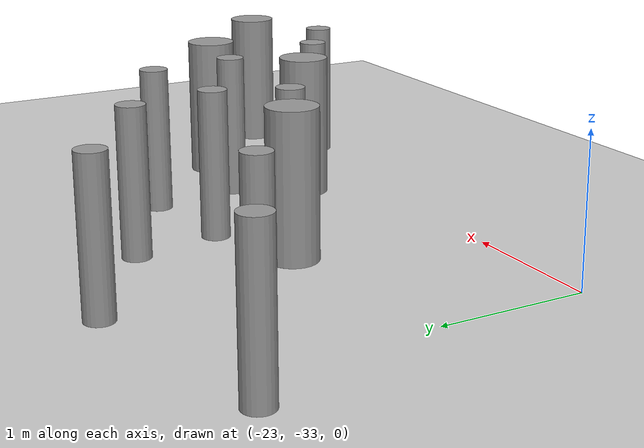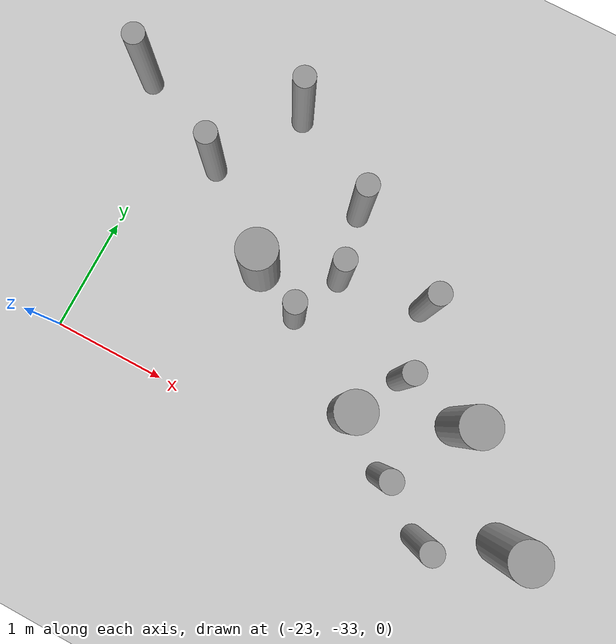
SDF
<sdf version="1.6">
 <world name="default">
  <model name="ground_plane">
   <static>1</static>
   <link name="link">
    <collision name="collision">
     <geometry><plane><normal>0 0 1</normal><size>100 100</size></plane></geometry>
     <surface><friction><ode><mu>100</mu><mu2>50</mu2></ode></friction></surface>
    </collision>
    <visual name="visual">
     <cast_shadows>0</cast_shadows>
     <geometry><plane><normal>0 0 1</normal><size>100 100</size></plane></geometry>
     <material>
      <script><uri>file://media/materials/scripts/gazebo.material</uri><name>Gazebo/Grey</name></script>
     </material>
    </visual>
   </link>
  </model>
  <model name="cyl_wall_clone_clone_1_clone_clone_1">
   <link name="link_0">
    <pose>-2.73893 -0.366465 0 0 -0 0</pose>
    <inertial>
     <mass>0.0374993</mass>
     <inertia>
      <ixx>0.00321281</ixx>
      <ixy>0</ixy>
      <ixz>0</ixz>
      <iyy>0.00321281</iyy>
      <iyz>0</iyz>
      <izz>0.000175774</izz>
     </inertia>
    </inertial>
    <visual name="visual">
     <geometry><cylinder><radius>0.0968661</radius><length>1</length></cylinder></geometry>
     <material>
      <lighting>1</lighting>
      <script><uri>file://media/materials/scripts/gazebo.material</uri><name>Gazebo/Grey</name></script>
      <ambient>0.3 0.3 0.3 1</ambient>
      <diffuse>0.7 0.7 0.7 1</diffuse>
      <specular>0.01 0.01 0.01 1</specular>
      <emissive>0 0 0 1</emissive>
     </material>
    </visual>
    <collision name="collision">
     <geometry><cylinder><radius>0.096866</radius><length>1</length></cylinder></geometry>
     <surface>
      <friction>
       <ode><mu>1</mu><mu2>1</mu2><fdir1>0 0 0</fdir1><slip1>0</slip1><slip2>0</slip2></ode>
       <torsional>
        <coefficient>1</coefficient>
        <patch_radius>0</patch_radius>
        <surface_radius>0</surface_radius>
        <use_patch_radius>1</use_patch_radius>
        <ode><slip>0</slip></ode>
       </torsional>
      </friction>
      <bounce><restitution_coefficient>0</restitution_coefficient><threshold>1e+06</threshold></bounce>
      <contact>
       <collide_without_contact>0</collide_without_contact>
       <collide_without_contact_bitmask>1</collide_without_contact_bitmask>
       <collide_bitmask>1</collide_bitmask>
       <ode>
        <soft_cfm>0</soft_cfm>
        <soft_erp>0.2</soft_erp>
        <kp>1e+13</kp>
        <kd>1</kd>
        <max_vel>0.01</max_vel>
        <min_depth>0</min_depth>
       </ode>
       <bullet>
        <split_impulse>1</split_impulse>
        <split_impulse_penetration_threshold>-0.01</split_impulse_penetration_threshold>
        <soft_cfm>0</soft_cfm>
        <soft_erp>0.2</soft_erp>
        <kp>1e+13</kp>
        <kd>1</kd>
       </bullet>
      </contact>
     </surface>
    </collision>
   </link>
   <link name="link_0_clone">
    <pose>-1.73893 0.61877 0 0 -0 0</pose>
    <inertial>
     <mass>0.0374993</mass>
     <inertia>
      <ixx>0.00321281</ixx>
      <ixy>0</ixy>
      <ixz>0</ixz>
      <iyy>0.00321281</iyy>
      <iyz>0</iyz>
      <izz>0.000175774</izz>
     </inertia>
    </inertial>
    <visual name="visual">
     <geometry><cylinder><radius>0.0968661</radius><length>1</length></cylinder></geometry>
     <material>
      <lighting>1</lighting>
      <script><uri>file://media/materials/scripts/gazebo.material</uri><name>Gazebo/Grey</name></script>
      <ambient>0.3 0.3 0.3 1</ambient>
      <diffuse>0.7 0.7 0.7 1</diffuse>
      <specular>0.01 0.01 0.01 1</specular>
      <emissive>0 0 0 1</emissive>
      <shader type="pixel"/>
     </material>
    </visual>
    <collision name="collision">
     <geometry><cylinder><radius>0.096866</radius><length>1</length></cylinder></geometry>
     <surface>
      <friction>
       <ode><mu>1</mu><mu2>1</mu2><fdir1>0 0 0</fdir1><slip1>0</slip1><slip2>0</slip2></ode>
       <torsional>
        <coefficient>1</coefficient>
        <patch_radius>0</patch_radius>
        <surface_radius>0</surface_radius>
        <use_patch_radius>1</use_patch_radius>
        <ode><slip>0</slip></ode>
       </torsional>
      </friction>
      <bounce><restitution_coefficient>0</restitution_coefficient><threshold>1e+06</threshold></bounce>
      <contact>
       <collide_without_contact>0</collide_without_contact>
       <collide_without_contact_bitmask>1</collide_without_contact_bitmask>
       <collide_bitmask>1</collide_bitmask>
       <ode>
        <soft_cfm>0</soft_cfm>
        <soft_erp>0.2</soft_erp>
        <kp>1e+13</kp>
        <kd>1</kd>
        <max_vel>0.01</max_vel>
        <min_depth>0</min_depth>
       </ode>
       <bullet>
        <split_impulse>1</split_impulse>
        <split_impulse_penetration_threshold>-0.01</split_impulse_penetration_threshold>
        <soft_cfm>0</soft_cfm>
        <soft_erp>0.2</soft_erp>
        <kp>1e+13</kp>
        <kd>1</kd>
       </bullet>
      </contact>
     </surface>
    </collision>
   </link>
   <link name="link_0_clone_clone">
    <pose>-0.327073 0.143919 0 0 -0 0</pose>
    <inertial>
     <mass>0.0374993</mass>
     <inertia>
      <ixx>0.00321281</ixx>
      <ixy>0</ixy>
      <ixz>0</ixz>
      <iyy>0.00321281</iyy>
      <iyz>0</iyz>
      <izz>0.000175774</izz>
     </inertia>
    </inertial>
    <visual name="visual">
     <geometry><cylinder><radius>0.0968661</radius><length>1</length></cylinder></geometry>
     <material>
      <lighting>1</lighting>
      <script><uri>file://media/materials/scripts/gazebo.material</uri><name>Gazebo/Grey</name></script>
      <ambient>0.3 0.3 0.3 1</ambient>
      <diffuse>0.7 0.7 0.7 1</diffuse>
      <specular>0.01 0.01 0.01 1</specular>
      <emissive>0 0 0 1</emissive>
      <shader type="pixel"/>
     </material>
    </visual>
    <collision name="collision">
     <geometry><cylinder><radius>0.096866</radius><length>1</length></cylinder></geometry>
     <surface>
      <friction>
       <ode><mu>1</mu><mu2>1</mu2><fdir1>0 0 0</fdir1><slip1>0</slip1><slip2>0</slip2></ode>
       <torsional>
        <coefficient>1</coefficient>
        <patch_radius>0</patch_radius>
        <surface_radius>0</surface_radius>
        <use_patch_radius>1</use_patch_radius>
        <ode><slip>0</slip></ode>
       </torsional>
      </friction>
      <bounce><restitution_coefficient>0</restitution_coefficient><threshold>1e+06</threshold></bounce>
      <contact>
       <collide_without_contact>0</collide_without_contact>
       <collide_without_contact_bitmask>1</collide_without_contact_bitmask>
       <collide_bitmask>1</collide_bitmask>
       <ode>
        <soft_cfm>0</soft_cfm>
        <soft_erp>0.2</soft_erp>
        <kp>1e+13</kp>
        <kd>1</kd>
        <max_vel>0.01</max_vel>
        <min_depth>0</min_depth>
       </ode>
       <bullet>
        <split_impulse>1</split_impulse>
        <split_impulse_penetration_threshold>-0.01</split_impulse_penetration_threshold>
        <soft_cfm>0</soft_cfm>
        <soft_erp>0.2</soft_erp>
        <kp>1e+13</kp>
        <kd>1</kd>
       </bullet>
      </contact>
     </surface>
    </collision>
   </link>
   <link name="link_0_clone_clone_0">
    <pose>1.26107 -0.419359 0 0 -0 0</pose>
    <inertial>
     <mass>0.0374993</mass>
     <inertia>
      <ixx>0.00321281</ixx>
      <ixy>0</ixy>
      <ixz>0</ixz>
      <iyy>0.00321281</iyy>
      <iyz>0</iyz>
      <izz>0.000175774</izz>
     </inertia>
    </inertial>
    <visual name="visual">
     <geometry><cylinder><radius>0.0968661</radius><length>1</length></cylinder></geometry>
     <material>
      <lighting>1</lighting>
      <script><uri>file://media/materials/scripts/gazebo.material</uri><name>Gazebo/Grey</name></script>
      <ambient>0.3 0.3 0.3 1</ambient>
      <diffuse>0.7 0.7 0.7 1</diffuse>
      <specular>0.01 0.01 0.01 1</specular>
      <emissive>0 0 0 1</emissive>
      <shader type="pixel"/>
     </material>
    </visual>
    <collision name="collision">
     <geometry><cylinder><radius>0.096866</radius><length>1</length></cylinder></geometry>
     <surface>
      <friction>
       <ode><mu>1</mu><mu2>1</mu2><fdir1>0 0 0</fdir1><slip1>0</slip1><slip2>0</slip2></ode>
       <torsional>
        <coefficient>1</coefficient>
        <patch_radius>0</patch_radius>
        <surface_radius>0</surface_radius>
        <use_patch_radius>1</use_patch_radius>
        <ode><slip>0</slip></ode>
       </torsional>
      </friction>
      <bounce><restitution_coefficient>0</restitution_coefficient><threshold>1e+06</threshold></bounce>
      <contact>
       <collide_without_contact>0</collide_without_contact>
       <collide_without_contact_bitmask>1</collide_without_contact_bitmask>
       <collide_bitmask>1</collide_bitmask>
       <ode>
        <soft_cfm>0</soft_cfm>
        <soft_erp>0.2</soft_erp>
        <kp>1e+13</kp>
        <kd>1</kd>
        <max_vel>0.01</max_vel>
        <min_depth>0</min_depth>
       </ode>
       <bullet>
        <split_impulse>1</split_impulse>
        <split_impulse_penetration_threshold>-0.01</split_impulse_penetration_threshold>
        <soft_cfm>0</soft_cfm>
        <soft_erp>0.2</soft_erp>
        <kp>1e+13</kp>
        <kd>1</kd>
       </bullet>
      </contact>
     </surface>
    </collision>
   </link>
   <link name="link_0_clone_clone_1">
    <pose>-1.73893 -0.277168 0 0 -0 0</pose>
    <inertial>
     <mass>0.0374993</mass>
     <inertia>
      <ixx>0.00321281</ixx>
      <ixy>0</ixy>
      <ixz>0</ixz>
      <iyy>0.00321281</iyy>
      <iyz>0</iyz>
      <izz>0.000175774</izz>
     </inertia>
    </inertial>
    <visual name="visual">
     <geometry><cylinder><radius>0.0968661</radius><length>1</length></cylinder></geometry>
     <material>
      <lighting>1</lighting>
      <script><uri>file://media/materials/scripts/gazebo.material</uri><name>Gazebo/Grey</name></script>
      <ambient>0.3 0.3 0.3 1</ambient>
      <diffuse>0.7 0.7 0.7 1</diffuse>
      <specular>0.01 0.01 0.01 1</specular>
      <emissive>0 0 0 1</emissive>
      <shader type="pixel"/>
     </material>
    </visual>
    <collision name="collision">
     <geometry><cylinder><radius>0.096866</radius><length>1</length></cylinder></geometry>
     <surface>
      <friction>
       <ode><mu>1</mu><mu2>1</mu2><fdir1>0 0 0</fdir1><slip1>0</slip1><slip2>0</slip2></ode>
       <torsional>
        <coefficient>1</coefficient>
        <patch_radius>0</patch_radius>
        <surface_radius>0</surface_radius>
        <use_patch_radius>1</use_patch_radius>
        <ode><slip>0</slip></ode>
       </torsional>
      </friction>
      <bounce><restitution_coefficient>0</restitution_coefficient><threshold>1e+06</threshold></bounce>
      <contact>
       <collide_without_contact>0</collide_without_contact>
       <collide_without_contact_bitmask>1</collide_without_contact_bitmask>
       <collide_bitmask>1</collide_bitmask>
       <ode>
        <soft_cfm>0</soft_cfm>
        <soft_erp>0.2</soft_erp>
        <kp>1e+13</kp>
        <kd>1</kd>
        <max_vel>0.01</max_vel>
        <min_depth>0</min_depth>
       </ode>
       <bullet>
        <split_impulse>1</split_impulse>
        <split_impulse_penetration_threshold>-0.01</split_impulse_penetration_threshold>
        <soft_cfm>0</soft_cfm>
        <soft_erp>0.2</soft_erp>
        <kp>1e+13</kp>
        <kd>1</kd>
       </bullet>
      </contact>
     </surface>
    </collision>
   </link>
   <link name="link_0_clone_clone_2">
    <pose>-0.738934 0.593961 0 0 -0 0</pose>
    <inertial>
     <mass>0.0374993</mass>
     <inertia>
      <ixx>0.00321281</ixx>
      <ixy>0</ixy>
      <ixz>0</ixz>
      <iyy>0.00321281</iyy>
      <iyz>0</iyz>
      <izz>0.000175774</izz>
     </inertia>
    </inertial>
    <visual name="visual">
     <geometry><cylinder><radius>0.0968661</radius><length>1</length></cylinder></geometry>
     <material>
      <lighting>1</lighting>
      <script><uri>file://media/materials/scripts/gazebo.material</uri><name>Gazebo/Grey</name></script>
      <ambient>0.3 0.3 0.3 1</ambient>
      <diffuse>0.7 0.7 0.7 1</diffuse>
      <specular>0.01 0.01 0.01 1</specular>
      <emissive>0 0 0 1</emissive>
      <shader type="pixel"/>
     </material>
    </visual>
    <collision name="collision">
     <geometry><cylinder><radius>0.096866</radius><length>1</length></cylinder></geometry>
     <surface>
      <friction>
       <ode><mu>1</mu><mu2>1</mu2><fdir1>0 0 0</fdir1><slip1>0</slip1><slip2>0</slip2></ode>
       <torsional>
        <coefficient>1</coefficient>
        <patch_radius>0</patch_radius>
        <surface_radius>0</surface_radius>
        <use_patch_radius>1</use_patch_radius>
        <ode><slip>0</slip></ode>
       </torsional>
      </friction>
      <bounce><restitution_coefficient>0</restitution_coefficient><threshold>1e+06</threshold></bounce>
      <contact>
       <collide_without_contact>0</collide_without_contact>
       <collide_without_contact_bitmask>1</collide_without_contact_bitmask>
       <collide_bitmask>1</collide_bitmask>
       <ode>
        <soft_cfm>0</soft_cfm>
        <soft_erp>0.2</soft_erp>
        <kp>1e+13</kp>
        <kd>1</kd>
        <max_vel>0.01</max_vel>
        <min_depth>0</min_depth>
       </ode>
       <bullet>
        <split_impulse>1</split_impulse>
        <split_impulse_penetration_threshold>-0.01</split_impulse_penetration_threshold>
        <soft_cfm>0</soft_cfm>
        <soft_erp>0.2</soft_erp>
        <kp>1e+13</kp>
        <kd>1</kd>
       </bullet>
      </contact>
     </surface>
    </collision>
   </link>
   <link name="link_0_clone_clone_3">
    <pose>0.261066 0.624849 0 0 -0 0</pose>
    <inertial>
     <mass>0.0374993</mass>
     <inertia>
      <ixx>0.00321281</ixx>
      <ixy>0</ixy>
      <ixz>0</ixz>
      <iyy>0.00321281</iyy>
      <iyz>0</iyz>
      <izz>0.000175774</izz>
     </inertia>
    </inertial>
    <visual name="visual">
     <geometry><cylinder><radius>0.0968661</radius><length>1</length></cylinder></geometry>
     <material>
      <lighting>1</lighting>
      <script><uri>file://media/materials/scripts/gazebo.material</uri><name>Gazebo/Grey</name></script>
      <ambient>0.3 0.3 0.3 1</ambient>
      <diffuse>0.7 0.7 0.7 1</diffuse>
      <specular>0.01 0.01 0.01 1</specular>
      <emissive>0 0 0 1</emissive>
      <shader type="pixel"/>
     </material>
    </visual>
    <collision name="collision">
     <geometry><cylinder><radius>0.096866</radius><length>1</length></cylinder></geometry>
     <surface>
      <friction>
       <ode><mu>1</mu><mu2>1</mu2><fdir1>0 0 0</fdir1><slip1>0</slip1><slip2>0</slip2></ode>
       <torsional>
        <coefficient>1</coefficient>
        <patch_radius>0</patch_radius>
        <surface_radius>0</surface_radius>
        <use_patch_radius>1</use_patch_radius>
        <ode><slip>0</slip></ode>
       </torsional>
      </friction>
      <bounce><restitution_coefficient>0</restitution_coefficient><threshold>1e+06</threshold></bounce>
      <contact>
       <collide_without_contact>0</collide_without_contact>
       <collide_without_contact_bitmask>1</collide_without_contact_bitmask>
       <collide_bitmask>1</collide_bitmask>
       <ode>
        <soft_cfm>0</soft_cfm>
        <soft_erp>0.2</soft_erp>
        <kp>1e+13</kp>
        <kd>1</kd>
        <max_vel>0.01</max_vel>
        <min_depth>0</min_depth>
       </ode>
       <bullet>
        <split_impulse>1</split_impulse>
        <split_impulse_penetration_threshold>-0.01</split_impulse_penetration_threshold>
        <soft_cfm>0</soft_cfm>
        <soft_erp>0.2</soft_erp>
        <kp>1e+13</kp>
        <kd>1</kd>
       </bullet>
      </contact>
     </surface>
    </collision>
   </link>
   <link name="link_0_clone_clone_4">
    <pose>-0.239049 -0.353105 0 0 -0 0</pose>
    <inertial>
     <mass>0.0374993</mass>
     <inertia>
      <ixx>0.00321281</ixx>
      <ixy>0</ixy>
      <ixz>0</ixz>
      <iyy>0.00321281</iyy>
      <iyz>0</iyz>
      <izz>0.000175774</izz>
     </inertia>
    </inertial>
    <visual name="visual">
     <geometry><cylinder><radius>0.0968661</radius><length>1</length></cylinder></geometry>
     <material>
      <lighting>1</lighting>
      <script><uri>file://media/materials/scripts/gazebo.material</uri><name>Gazebo/Grey</name></script>
      <ambient>0.3 0.3 0.3 1</ambient>
      <diffuse>0.7 0.7 0.7 1</diffuse>
      <specular>0.01 0.01 0.01 1</specular>
      <emissive>0 0 0 1</emissive>
      <shader type="pixel"/>
     </material>
    </visual>
    <collision name="collision">
     <geometry><cylinder><radius>0.096866</radius><length>1</length></cylinder></geometry>
     <surface>
      <friction>
       <ode><mu>1</mu><mu2>1</mu2><fdir1>0 0 0</fdir1><slip1>0</slip1><slip2>0</slip2></ode>
       <torsional>
        <coefficient>1</coefficient>
        <patch_radius>0</patch_radius>
        <surface_radius>0</surface_radius>
        <use_patch_radius>1</use_patch_radius>
        <ode><slip>0</slip></ode>
       </torsional>
      </friction>
      <bounce><restitution_coefficient>0</restitution_coefficient><threshold>1e+06</threshold></bounce>
      <contact>
       <collide_without_contact>0</collide_without_contact>
       <collide_without_contact_bitmask>1</collide_without_contact_bitmask>
       <collide_bitmask>1</collide_bitmask>
       <ode>
        <soft_cfm>0</soft_cfm>
        <soft_erp>0.2</soft_erp>
        <kp>1e+13</kp>
        <kd>1</kd>
        <max_vel>0.01</max_vel>
        <min_depth>0</min_depth>
       </ode>
       <bullet>
        <split_impulse>1</split_impulse>
        <split_impulse_penetration_threshold>-0.01</split_impulse_penetration_threshold>
        <soft_cfm>0</soft_cfm>
        <soft_erp>0.2</soft_erp>
        <kp>1e+13</kp>
        <kd>1</kd>
       </bullet>
      </contact>
     </surface>
    </collision>
   </link>
   <link name="link_0_clone_clone_5">
    <pose>0.672792 0.143919 0 0 -0 0</pose>
    <inertial>
     <mass>0.0374993</mass>
     <inertia>
      <ixx>0.00321281</ixx>
      <ixy>0</ixy>
      <ixz>0</ixz>
      <iyy>0.00321281</iyy>
      <iyz>0</iyz>
      <izz>0.000175774</izz>
     </inertia>
    </inertial>
    <visual name="visual">
     <geometry><cylinder><radius>0.0968661</radius><length>1</length></cylinder></geometry>
     <material>
      <lighting>1</lighting>
      <script><uri>file://media/materials/scripts/gazebo.material</uri><name>Gazebo/Grey</name></script>
      <ambient>0.3 0.3 0.3 1</ambient>
      <diffuse>0.7 0.7 0.7 1</diffuse>
      <specular>0.01 0.01 0.01 1</specular>
      <emissive>0 0 0 1</emissive>
      <shader type="pixel"/>
     </material>
    </visual>
    <collision name="collision">
     <geometry><cylinder><radius>0.096866</radius><length>1</length></cylinder></geometry>
     <surface>
      <friction>
       <ode><mu>1</mu><mu2>1</mu2><fdir1>0 0 0</fdir1><slip1>0</slip1><slip2>0</slip2></ode>
       <torsional>
        <coefficient>1</coefficient>
        <patch_radius>0</patch_radius>
        <surface_radius>0</surface_radius>
        <use_patch_radius>1</use_patch_radius>
        <ode><slip>0</slip></ode>
       </torsional>
      </friction>
      <bounce><restitution_coefficient>0</restitution_coefficient><threshold>1e+06</threshold></bounce>
      <contact>
       <collide_without_contact>0</collide_without_contact>
       <collide_without_contact_bitmask>1</collide_without_contact_bitmask>
       <collide_bitmask>1</collide_bitmask>
       <ode>
        <soft_cfm>0</soft_cfm>
        <soft_erp>0.2</soft_erp>
        <kp>1e+13</kp>
        <kd>1</kd>
        <max_vel>0.01</max_vel>
        <min_depth>0</min_depth>
       </ode>
       <bullet>
        <split_impulse>1</split_impulse>
        <split_impulse_penetration_threshold>-0.01</split_impulse_penetration_threshold>
        <soft_cfm>0</soft_cfm>
        <soft_erp>0.2</soft_erp>
        <kp>1e+13</kp>
        <kd>1</kd>
       </bullet>
      </contact>
     </surface>
    </collision>
   </link>
   <link name="link_0_clone_clone_6">
    <pose>1.84596 -0.433423 0 0 -0 0</pose>
    <inertial>
     <mass>0.0374993</mass>
     <inertia>
      <ixx>0.00321281</ixx>
      <ixy>0</ixy>
      <ixz>0</ixz>
      <iyy>0.00321281</iyy>
      <iyz>0</iyz>
      <izz>0.000175774</izz>
     </inertia>
    </inertial>
    <visual name="visual">
     <geometry><cylinder><radius>0.0968661</radius><length>1</length></cylinder></geometry>
     <material>
      <lighting>1</lighting>
      <script><uri>file://media/materials/scripts/gazebo.material</uri><name>Gazebo/Grey</name></script>
      <ambient>0.3 0.3 0.3 1</ambient>
      <diffuse>0.7 0.7 0.7 1</diffuse>
      <specular>0.01 0.01 0.01 1</specular>
      <emissive>0 0 0 1</emissive>
      <shader type="pixel"/>
     </material>
    </visual>
    <collision name="collision">
     <geometry><cylinder><radius>0.096866</radius><length>1</length></cylinder></geometry>
     <surface>
      <friction>
       <ode><mu>1</mu><mu2>1</mu2><fdir1>0 0 0</fdir1><slip1>0</slip1><slip2>0</slip2></ode>
       <torsional>
        <coefficient>1</coefficient>
        <patch_radius>0</patch_radius>
        <surface_radius>0</surface_radius>
        <use_patch_radius>1</use_patch_radius>
        <ode><slip>0</slip></ode>
       </torsional>
      </friction>
      <bounce><restitution_coefficient>0</restitution_coefficient><threshold>1e+06</threshold></bounce>
      <contact>
       <collide_without_contact>0</collide_without_contact>
       <collide_without_contact_bitmask>1</collide_without_contact_bitmask>
       <collide_bitmask>1</collide_bitmask>
       <ode>
        <soft_cfm>0</soft_cfm>
        <soft_erp>0.2</soft_erp>
        <kp>1e+13</kp>
        <kd>1</kd>
        <max_vel>0.01</max_vel>
        <min_depth>0</min_depth>
       </ode>
       <bullet>
        <split_impulse>1</split_impulse>
        <split_impulse_penetration_threshold>-0.01</split_impulse_penetration_threshold>
        <soft_cfm>0</soft_cfm>
        <soft_erp>0.2</soft_erp>
        <kp>1e+13</kp>
        <kd>1</kd>
       </bullet>
      </contact>
     </surface>
    </collision>
   </link>
   <link name="link_1">
    <pose>-0.738934 -0.397931 0 0 -0 0</pose>
    <inertial>
     <mass>0.117398</mass>
     <inertia>
      <ixx>0.0106445</ixx>
      <ixy>0</ixy>
      <ixz>0</ixz>
      <iyy>0.0106445</iyy>
      <iyz>0</iyz>
      <izz>0.00172278</izz>
     </inertia>
    </inertial>
    <visual name="visual">
     <geometry><cylinder><radius>0.171317</radius><length>1</length></cylinder></geometry>
     <material>
      <lighting>1</lighting>
      <script><uri>file://media/materials/scripts/gazebo.material</uri><name>Gazebo/Grey</name></script>
      <ambient>0.3 0.3 0.3 1</ambient>
      <diffuse>0.7 0.7 0.7 1</diffuse>
      <specular>0.01 0.01 0.01 1</specular>
      <emissive>0 0 0 1</emissive>
     </material>
    </visual>
    <collision name="collision">
     <geometry><cylinder><radius>0.171317</radius><length>1</length></cylinder></geometry>
     <surface>
      <friction>
       <ode><mu>1</mu><mu2>1</mu2><fdir1>0 0 0</fdir1><slip1>0</slip1><slip2>0</slip2></ode>
       <torsional>
        <coefficient>1</coefficient>
        <patch_radius>0</patch_radius>
        <surface_radius>0</surface_radius>
        <use_patch_radius>1</use_patch_radius>
        <ode><slip>0</slip></ode>
       </torsional>
      </friction>
      <bounce><restitution_coefficient>0</restitution_coefficient><threshold>1e+06</threshold></bounce>
      <contact>
       <collide_without_contact>0</collide_without_contact>
       <collide_without_contact_bitmask>1</collide_without_contact_bitmask>
       <collide_bitmask>1</collide_bitmask>
       <ode>
        <soft_cfm>0</soft_cfm>
        <soft_erp>0.2</soft_erp>
        <kp>1e+13</kp>
        <kd>1</kd>
        <max_vel>0.01</max_vel>
        <min_depth>0</min_depth>
       </ode>
       <bullet>
        <split_impulse>1</split_impulse>
        <split_impulse_penetration_threshold>-0.01</split_impulse_penetration_threshold>
        <soft_cfm>0</soft_cfm>
        <soft_erp>0.2</soft_erp>
        <kp>1e+13</kp>
        <kd>1</kd>
       </bullet>
      </contact>
     </surface>
    </collision>
   </link>
   <link name="link_1_clone">
    <pose>0.697784 -0.380861 0 0 -0 0</pose>
    <inertial>
     <mass>0.117398</mass>
     <inertia>
      <ixx>0.0106445</ixx>
      <ixy>0</ixy>
      <ixz>0</ixz>
      <iyy>0.0106445</iyy>
      <iyz>0</iyz>
      <izz>0.00172278</izz>
     </inertia>
    </inertial>
    <visual name="visual">
     <geometry><cylinder><radius>0.171317</radius><length>1</length></cylinder></geometry>
     <material>
      <lighting>1</lighting>
      <script><uri>file://media/materials/scripts/gazebo.material</uri><name>Gazebo/Grey</name></script>
      <ambient>0.3 0.3 0.3 1</ambient>
      <diffuse>0.7 0.7 0.7 1</diffuse>
      <specular>0.01 0.01 0.01 1</specular>
      <emissive>0 0 0 1</emissive>
      <shader type="pixel"/>
     </material>
    </visual>
    <collision name="collision">
     <geometry><cylinder><radius>0.171317</radius><length>1</length></cylinder></geometry>
     <surface>
      <friction>
       <ode><mu>1</mu><mu2>1</mu2><fdir1>0 0 0</fdir1><slip1>0</slip1><slip2>0</slip2></ode>
       <torsional>
        <coefficient>1</coefficient>
        <patch_radius>0</patch_radius>
        <surface_radius>0</surface_radius>
        <use_patch_radius>1</use_patch_radius>
        <ode><slip>0</slip></ode>
       </torsional>
      </friction>
      <bounce><restitution_coefficient>0</restitution_coefficient><threshold>1e+06</threshold></bounce>
      <contact>
       <collide_without_contact>0</collide_without_contact>
       <collide_without_contact_bitmask>1</collide_without_contact_bitmask>
       <collide_bitmask>1</collide_bitmask>
       <ode>
        <soft_cfm>0</soft_cfm>
        <soft_erp>0.2</soft_erp>
        <kp>1e+13</kp>
        <kd>1</kd>
        <max_vel>0.01</max_vel>
        <min_depth>0</min_depth>
       </ode>
       <bullet>
        <split_impulse>1</split_impulse>
        <split_impulse_penetration_threshold>-0.01</split_impulse_penetration_threshold>
        <soft_cfm>0</soft_cfm>
        <soft_erp>0.2</soft_erp>
        <kp>1e+13</kp>
        <kd>1</kd>
       </bullet>
      </contact>
     </surface>
    </collision>
   </link>
   <link name="link_1_clone_0">
    <pose>1.26107 0.358974 0 0 -0 0</pose>
    <inertial>
     <mass>0.117398</mass>
     <inertia>
      <ixx>0.0106445</ixx>
      <ixy>0</ixy>
      <ixz>0</ixz>
      <iyy>0.0106445</iyy>
      <iyz>0</iyz>
      <izz>0.00172278</izz>
     </inertia>
    </inertial>
    <visual name="visual">
     <geometry><cylinder><radius>0.171317</radius><length>1</length></cylinder></geometry>
     <material>
      <lighting>1</lighting>
      <script><uri>file://media/materials/scripts/gazebo.material</uri><name>Gazebo/Grey</name></script>
      <ambient>0.3 0.3 0.3 1</ambient>
      <diffuse>0.7 0.7 0.7 1</diffuse>
      <specular>0.01 0.01 0.01 1</specular>
      <emissive>0 0 0 1</emissive>
      <shader type="pixel"/>
     </material>
    </visual>
    <collision name="collision">
     <geometry><cylinder><radius>0.171317</radius><length>1</length></cylinder></geometry>
     <surface>
      <friction>
       <ode><mu>1</mu><mu2>1</mu2><fdir1>0 0 0</fdir1><slip1>0</slip1><slip2>0</slip2></ode>
       <torsional>
        <coefficient>1</coefficient>
        <patch_radius>0</patch_radius>
        <surface_radius>0</surface_radius>
        <use_patch_radius>1</use_patch_radius>
        <ode><slip>0</slip></ode>
       </torsional>
      </friction>
      <bounce><restitution_coefficient>0</restitution_coefficient><threshold>1e+06</threshold></bounce>
      <contact>
       <collide_without_contact>0</collide_without_contact>
       <collide_without_contact_bitmask>1</collide_without_contact_bitmask>
       <collide_bitmask>1</collide_bitmask>
       <ode>
        <soft_cfm>0</soft_cfm>
        <soft_erp>0.2</soft_erp>
        <kp>1e+13</kp>
        <kd>1</kd>
        <max_vel>0.01</max_vel>
        <min_depth>0</min_depth>
       </ode>
       <bullet>
        <split_impulse>1</split_impulse>
        <split_impulse_penetration_threshold>-0.01</split_impulse_penetration_threshold>
        <soft_cfm>0</soft_cfm>
        <soft_erp>0.2</soft_erp>
        <kp>1e+13</kp>
        <kd>1</kd>
       </bullet>
      </contact>
     </surface>
    </collision>
   </link>
   <link name="link_1_clone_1">
    <pose>2.26107 0.143919 0 0 -0 0</pose>
    <inertial>
     <mass>0.117398</mass>
     <inertia>
      <ixx>0.0106445</ixx>
      <ixy>0</ixy>
      <ixz>0</ixz>
      <iyy>0.0106445</iyy>
      <iyz>0</iyz>
      <izz>0.00172278</izz>
     </inertia>
    </inertial>
    <visual name="visual">
     <geometry><cylinder><radius>0.171317</radius><length>1</length></cylinder></geometry>
     <material>
      <lighting>1</lighting>
      <script><uri>file://media/materials/scripts/gazebo.material</uri><name>Gazebo/Grey</name></script>
      <ambient>0.3 0.3 0.3 1</ambient>
      <diffuse>0.7 0.7 0.7 1</diffuse>
      <specular>0.01 0.01 0.01 1</specular>
      <emissive>0 0 0 1</emissive>
      <shader type="pixel"/>
     </material>
    </visual>
    <collision name="collision">
     <geometry><cylinder><radius>0.171317</radius><length>1</length></cylinder></geometry>
     <surface>
      <friction>
       <ode><mu>1</mu><mu2>1</mu2><fdir1>0 0 0</fdir1><slip1>0</slip1><slip2>0</slip2></ode>
       <torsional>
        <coefficient>1</coefficient>
        <patch_radius>0</patch_radius>
        <surface_radius>0</surface_radius>
        <use_patch_radius>1</use_patch_radius>
        <ode><slip>0</slip></ode>
       </torsional>
      </friction>
      <bounce><restitution_coefficient>0</restitution_coefficient><threshold>1e+06</threshold></bounce>
      <contact>
       <collide_without_contact>0</collide_without_contact>
       <collide_without_contact_bitmask>1</collide_without_contact_bitmask>
       <collide_bitmask>1</collide_bitmask>
       <ode>
        <soft_cfm>0</soft_cfm>
        <soft_erp>0.2</soft_erp>
        <kp>1e+13</kp>
        <kd>1</kd>
        <max_vel>0.01</max_vel>
        <min_depth>0</min_depth>
       </ode>
       <bullet>
        <split_impulse>1</split_impulse>
        <split_impulse_penetration_threshold>-0.01</split_impulse_penetration_threshold>
        <soft_cfm>0</soft_cfm>
        <soft_erp>0.2</soft_erp>
        <kp>1e+13</kp>
        <kd>1</kd>
       </bullet>
      </contact>
     </surface>
    </collision>
   </link>
   <static>1</static>
   <pose>-20.8337 -31.8222 0.5 0 0 -0.549185</pose>
  </model>
 </world>
</sdf>
